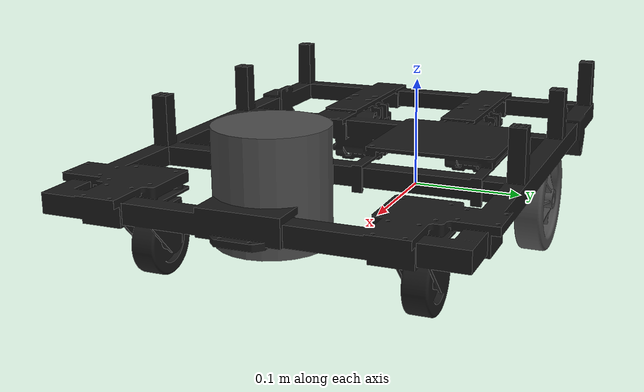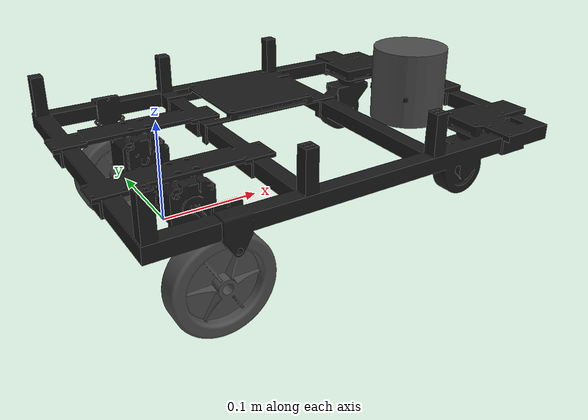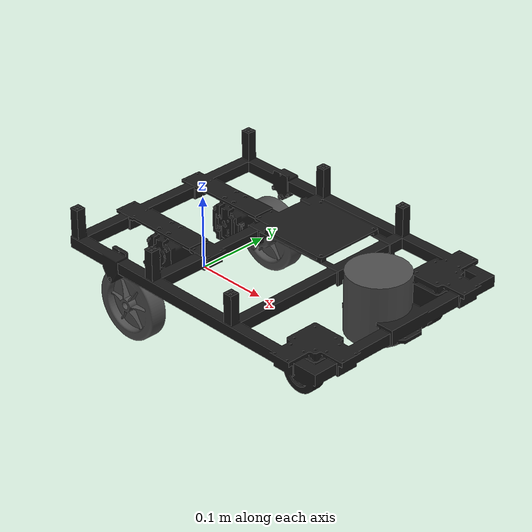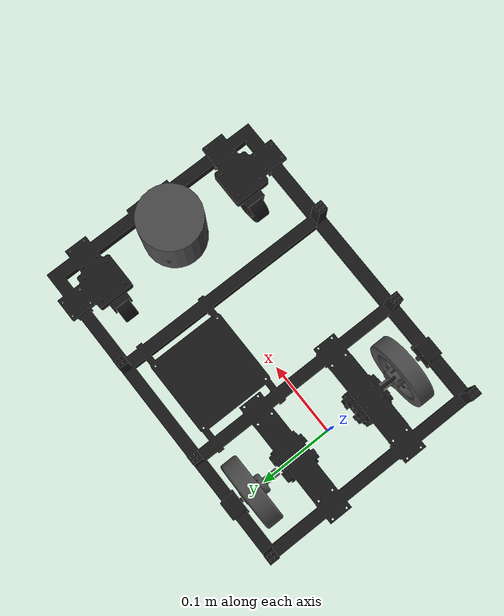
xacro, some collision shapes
<?xml version="1.0"?>
<robot xmlns:xacro="http://www.ros.org/wiki/xacro" name="dual_stepper">

    <!-- Include all macro definitions -->
    <xacro:include filename="robot_parts/base_link.xacro"/>
    <xacro:include filename="robot_parts/wheel.xacro"/>
    <xacro:include filename="robot_parts/lidar.xacro"/>
    <xacro:include filename="dual_stepper.ros2_control.xacro"/>

    <!-- Define reusable materials -->
    <material name="grey">
        <color rgba="0.3 0.3 0.3 1.0"/>
    </material>

    <material name="dark_grey">
        <color rgba="0.1 0.1 0.1 1.0"/>
    </material>

    <!-- Robot structure -->
    <xacro:base_link/>

    <xacro:wheel name="left_wheel" parent="base_link"
            xyz="0.0 0.1175 0.0" rpy="0 0 0" axis="0 1 0" mesh_filename="urdf_left_wheel.STL"/>

    <xacro:wheel name="right_wheel" parent="base_link"
            xyz="0.0 -0.1175 0.0" rpy="0 0 0" axis="0 1 0" mesh_filename="urdf_right_wheel.STL"/>

    <xacro:lidar_sensor name="lidar" parent="base_link"
                        xyz="0.29685 0 0.0845" rpy="0 0 0" mesh_filename="urdf_lidar_link.STL"/>

    <xacro:ros2_dual_stepper_controller name="DualStepperSystem" left="left_wheel" right="right_wheel"/>

</robot>

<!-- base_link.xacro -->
<robot xmlns:xacro="http://ros.org/wiki/xacro">
    <xacro:macro name="base_link">

        <link name="base_link">

            <visual>
                <origin rpy="0.0 0.0 0.0" xyz="0.0 0.0 0.0475"/>
                <geometry>
                    <mesh filename="package://ros2_dual_stepper_controller/description/meshes/urdf_base_link.STL"
                          scale="1 1 1"/>
                </geometry>
                <material name="dark_grey"/>
            </visual>

            <!-- Inertial is formally required by ros2_control but not functionally necessary for this simple example-->
            <inertial>
                <mass value="0.1"/>
                <origin xyz="0 0 0" rpy="0 0 0"/>
                <inertia ixx="1e-6" ixy="0" ixz="0" iyy="1e-6" iyz="0" izz="1e-6"/>
            </inertial>
        </link>

    </xacro:macro>
</robot>

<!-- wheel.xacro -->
<robot xmlns:xacro="http://ros.org/wiki/xacro">
    <xacro:macro name="wheel" params="name parent xyz rpy axis mesh_filename" >

        <link name="${name}">

            <visual>
                <origin rpy="0.0 0.0 0.0" xyz="0.0 0.0 0.0"/>
                <geometry>
                    <mesh filename="package://ros2_dual_stepper_controller/description/meshes/${mesh_filename}"
                          scale="1 1 1"/>
                </geometry>
                <material name="grey"/>
            </visual>

            <!-- Inertial is formally required by ros2_control but not functionally necessary for this simple example-->
            <inertial>
                <mass value="0.1"/>
                <origin xyz="0 0 0" rpy="0 0 0"/>
                <inertia ixx="1e-6" ixy="0" ixz="0" iyy="1e-6" iyz="0" izz="1e-6"/>
            </inertial>
        </link>

        <joint name="${name}_joint" type="continuous">
            <parent link="${parent}"/>
            <child link="${name}"/>
            <origin xyz="${xyz}" rpy="${rpy}"/>
            <axis xyz="${axis}"/>
        </joint>

    </xacro:macro>
</robot>

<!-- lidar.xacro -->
<robot xmlns:xacro="http://ros.org/wiki/xacro">

    <xacro:macro name="lidar_sensor" params="name parent xyz rpy mesh_filename">

        <!-- LiDAR link -->
        <link name="${name}">

            <!-- Visual for LiDAR housing -->
            <visual>
                <origin xyz="0 0 0" rpy="0 0 0"/>
                <geometry>
                    <mesh filename="package://ros2_dual_stepper_controller/description/meshes/${mesh_filename}" scale="1 1 1"/>
                </geometry>
                <material name="grey"/>
            </visual>

            <!-- Collision (use simplified mesh or cylinder for performance) -->
            <collision>
                <origin xyz="0 0 0" rpy="0 0 0"/>
                <geometry>
                    <cylinder length="0.08" radius="0.04"/> <!-- adjust to LiDAR size -->
                </geometry>
            </collision>

            <!-- Inertial (approx values) -->
            <inertial>
                <mass value="0.3"/>
                <origin xyz="0 0 0" rpy="0 0 0"/>
                <inertia ixx="1e-4" ixy="0" ixz="0" iyy="1e-4" iyz="0" izz="1e-4"/>
            </inertial>

        </link>

        <!-- Joint to attach to robot -->
        <joint name="${name}_joint" type="fixed">
            <parent link="${parent}"/>
            <child link="${name}"/>
            <origin xyz="${xyz}" rpy="${rpy}"/>
        </joint>

    </xacro:macro>

</robot>
